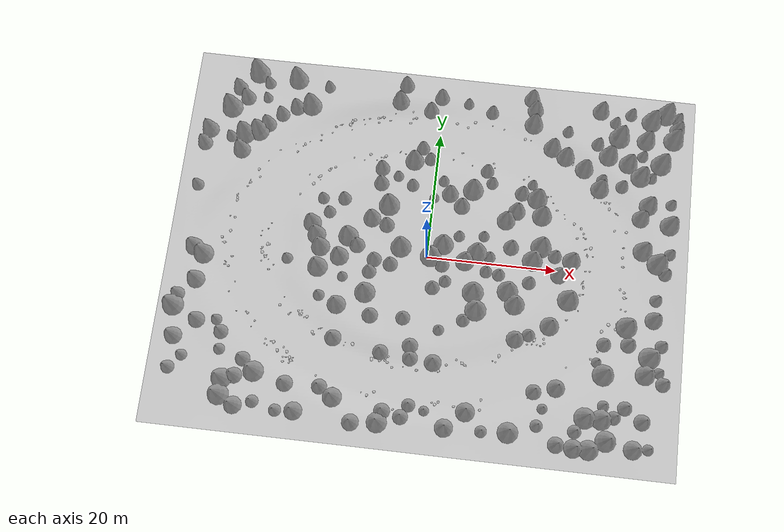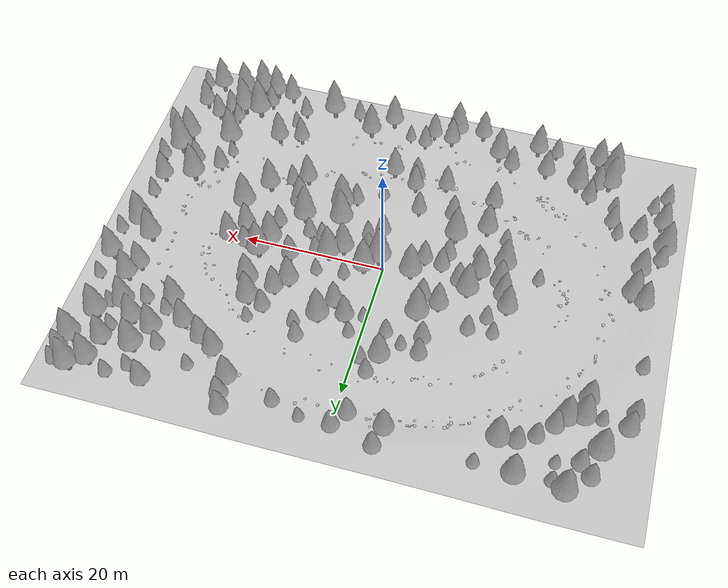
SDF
<sdf version="1.9">
 <world name="nomad_forest">
  <model name="terrain">
   <static>true</static>
   <link name="link">
    <visual name="visual">
     <geometry><mesh><uri>../assets/geometry/terrain.obj</uri><scale>1 1 1</scale></mesh></geometry>
    </visual>
    <collision name="rock">
     <geometry><mesh><uri>../assets/geometry/terrain.obj</uri><scale>1 1 1</scale></mesh></geometry>
    </collision>
   </link>
  </model>
  <model name="tree_008">
   <static>true</static>
   <pose>27.028014178492697 -13.703150324552041 0.10522057027871731 0 0 4.481603648520085</pose>
   <link name="link">
    <visual name="visual">
     <geometry>
      <mesh>
       <uri>../assets/models/pine_tree.obj</uri>
       <scale>0.872212938759646 0.872212938759646 0.872212938759646</scale>
      </mesh>
     </geometry>
    </visual>
    <collision name="trunk">
     <pose>0 0 1.3955407020154338 0 0 0</pose>
     <geometry>
      <cylinder><radius>0.17444258775192922</radius><length>2.7910814040308676</length></cylinder>
     </geometry>
    </collision>
   </link>
  </model>
  <model name="tree_027">
   <static>true</static>
   <pose>-3.5277313933253964 14.400699741064074 0.34554549312120136 0 0 4.773965867274131</pose>
   <link name="link">
    <visual name="visual">
     <geometry>
      <mesh>
       <uri>../assets/models/pine_tree.obj</uri>
       <scale>1.6400643866674114 1.6400643866674114 1.6400643866674114</scale>
      </mesh>
     </geometry>
    </visual>
    <collision name="trunk">
     <pose>0 0 2.6241030186678582 0 0 0</pose>
     <geometry>
      <cylinder><radius>0.3280128773334823</radius><length>5.2482060373357164</length></cylinder>
     </geometry>
    </collision>
   </link>
  </model>
  <model name="tree_037">
   <static>true</static>
   <pose>-6.838054801052387 24.097928054166218 0.3183466515210811 0 0 1.8420546594271203</pose>
   <link name="link">
    <visual name="visual">
     <geometry>
      <mesh>
       <uri>../assets/models/pine_tree.obj</uri>
       <scale>1.5101867661153476 1.5101867661153476 1.5101867661153476</scale>
      </mesh>
     </geometry>
    </visual>
    <collision name="trunk">
     <pose>0 0 2.4162988257845566 0 0 0</pose>
     <geometry>
      <cylinder><radius>0.30203735322306957</radius><length>4.832597651569113</length></cylinder>
     </geometry>
    </collision>
   </link>
  </model>
  <model name="tree_044">
   <static>true</static>
   <pose>-0.6944197450645646 -16.28772859136997 0.09216975908654848 0 0 5.097573754092246</pose>
   <link name="link">
    <visual name="visual">
     <geometry>
      <mesh>
       <uri>../assets/models/pine_tree.obj</uri>
       <scale>1.31694152696172 1.31694152696172 1.31694152696172</scale>
      </mesh>
     </geometry>
    </visual>
    <collision name="trunk">
     <pose>0 0 2.107106443138752 0 0 0</pose>
     <geometry><cylinder><radius>0.263388305392344</radius><length>4.214212886277504</length></cylinder></geometry>
    </collision>
   </link>
  </model>
  <model name="tree_050">
   <static>true</static>
   <pose>-1.1061359489396452 -25.091046535095707 0.2934541649659578 0 0 3.356134354959896</pose>
   <link name="link">
    <visual name="visual">
     <geometry>
      <mesh>
       <uri>../assets/models/pine_tree.obj</uri>
       <scale>1.2975089270482345 1.2975089270482345 1.2975089270482345</scale>
      </mesh>
     </geometry>
    </visual>
    <collision name="trunk">
     <pose>0 0 2.0760142832771753 0 0 0</pose>
     <geometry>
      <cylinder><radius>0.2595017854096469</radius><length>4.152028566554351</length></cylinder>
     </geometry>
    </collision>
   </link>
  </model>
  <model name="tree_052">
   <static>true</static>
   <pose>25.82947797008444 14.953682755541983 0.1237556540531741 0 0 5.209714762356501</pose>
   <link name="link">
    <visual name="visual">
     <geometry>
      <mesh>
       <uri>../assets/models/pine_tree.obj</uri>
       <scale>0.9728560512969 0.9728560512969 0.9728560512969</scale>
      </mesh>
     </geometry>
    </visual>
    <collision name="trunk">
     <pose>0 0 1.55656968207504 0 0 0</pose>
     <geometry><cylinder><radius>0.19457121025938</radius><length>3.11313936415008</length></cylinder></geometry>
    </collision>
   </link>
  </model>
  <model name="tree_057">
   <static>true</static>
   <pose>32.662530551681385 3.868126164199179 0.04584181324544547 0 0 1.265047968646845</pose>
   <link name="link">
    <visual name="visual">
     <geometry>
      <mesh>
       <uri>../assets/models/pine_tree.obj</uri>
       <scale>1.6828321635530306 1.6828321635530306 1.6828321635530306</scale>
      </mesh>
     </geometry>
    </visual>
    <collision name="trunk">
     <pose>0 0 2.6925314616848492 0 0 0</pose>
     <geometry>
      <cylinder><radius>0.33656643271060616</radius><length>5.3850629233696985</length></cylinder>
     </geometry>
    </collision>
   </link>
  </model>
  <model name="tree_088">
   <static>true</static>
   <pose>14.407480217703046 22.553752029402126 0.12159984545240302 0 0 1.0926064363496</pose>
   <link name="link">
    <visual name="visual">
     <geometry>
      <mesh>
       <uri>../assets/models/pine_tree.obj</uri>
       <scale>1.6249716935393592 1.6249716935393592 1.6249716935393592</scale>
      </mesh>
     </geometry>
    </visual>
    <collision name="trunk">
     <pose>0 0 2.599954709662975 0 0 0</pose>
     <geometry>
      <cylinder><radius>0.32499433870787187</radius><length>5.19990941932595</length></cylinder>
     </geometry>
    </collision>
   </link>
  </model>
  <model name="tree_089">
   <static>true</static>
   <pose>7.9109952699382475 14.24619827741737 0.14807216027929987 0 0 0.6908726701590014</pose>
   <link name="link">
    <visual name="visual">
     <geometry>
      <mesh>
       <uri>../assets/models/pine_tree.obj</uri>
       <scale>1.1662685729388265 1.1662685729388265 1.1662685729388265</scale>
      </mesh>
     </geometry>
    </visual>
    <collision name="trunk">
     <pose>0 0 1.8660297167021225 0 0 0</pose>
     <geometry>
      <cylinder><radius>0.2332537145877653</radius><length>3.732059433404245</length></cylinder>
     </geometry>
    </collision>
   </link>
  </model>
  <model name="tree_090">
   <static>true</static>
   <pose>15.18533694559948 13.00563300321808 0.022925955796178663 0 0 1.3401102927088524</pose>
   <link name="link">
    <visual name="visual">
     <geometry>
      <mesh>
       <uri>../assets/models/pine_tree.obj</uri>
       <scale>0.8771157931536824 0.8771157931536824 0.8771157931536824</scale>
      </mesh>
     </geometry>
    </visual>
    <collision name="trunk">
     <pose>0 0 1.403385269045892 0 0 0</pose>
     <geometry>
      <cylinder><radius>0.1754231586307365</radius><length>2.806770538091784</length></cylinder>
     </geometry>
    </collision>
   </link>
  </model>
  <model name="tree_093">
   <static>true</static>
   <pose>-0.4101599007176091 25.530758966068746 0.3203593033074379 0 0 1.381521473218588</pose>
   <link name="link">
    <visual name="visual">
     <geometry>
      <mesh>
       <uri>../assets/models/pine_tree.obj</uri>
       <scale>1.2950612626595357 1.2950612626595357 1.2950612626595357</scale>
      </mesh>
     </geometry>
    </visual>
    <collision name="trunk">
     <pose>0 0 2.072098020255257 0 0 0</pose>
     <geometry>
      <cylinder><radius>0.25901225253190713</radius><length>4.144196040510514</length></cylinder>
     </geometry>
    </collision>
   </link>
  </model>
  <model name="tree_107">
   <static>true</static>
   <pose>27.88689453451606 -10.970627983664116 0.007158645208842348 0 0 0.08446521569186297</pose>
   <link name="link">
    <visual name="visual">
     <geometry>
      <mesh>
       <uri>../assets/models/pine_tree.obj</uri>
       <scale>1.2264539337988716 1.2264539337988716 1.2264539337988716</scale>
      </mesh>
     </geometry>
    </visual>
    <collision name="trunk">
     <pose>0 0 1.9623262940781947 0 0 0</pose>
     <geometry>
      <cylinder><radius>0.24529078675977434</radius><length>3.9246525881563894</length></cylinder>
     </geometry>
    </collision>
   </link>
  </model>
  <model name="tree_116">
   <static>true</static>
   <pose>3.901959461409284 25.274708666629643 0.1876667054431287 0 0 2.3750415958828146</pose>
   <link name="link">
    <visual name="visual">
     <geometry>
      <mesh>
       <uri>../assets/models/pine_tree.obj</uri>
       <scale>0.881851551358716 0.881851551358716 0.881851551358716</scale>
      </mesh>
     </geometry>
    </visual>
    <collision name="trunk">
     <pose>0 0 1.4109624821739457 0 0 0</pose>
     <geometry>
      <cylinder><radius>0.1763703102717432</radius><length>2.8219249643478914</length></cylinder>
     </geometry>
    </collision>
   </link>
  </model>
  <model name="tree_117">
   <static>true</static>
   <pose>21.227727869553974 -18.35861671438202 0.12284261739145064 0 0 5.279835247835885</pose>
   <link name="link">
    <visual name="visual">
     <geometry>
      <mesh>
       <uri>../assets/models/pine_tree.obj</uri>
       <scale>1.5173100253855933 1.5173100253855933 1.5173100253855933</scale>
      </mesh>
     </geometry>
    </visual>
    <collision name="trunk">
     <pose>0 0 2.4276960406169494 0 0 0</pose>
     <geometry>
      <cylinder><radius>0.3034620050771187</radius><length>4.855392081233899</length></cylinder>
     </geometry>
    </collision>
   </link>
  </model>
  <model name="tree_125">
   <static>true</static>
   <pose>8.278923651371827 -23.338074658547907 0.04504216126783869 0 0 3.100685621794506</pose>
   <link name="link">
    <visual name="visual">
     <geometry>
      <mesh>
       <uri>../assets/models/pine_tree.obj</uri>
       <scale>1.6162740233519732 1.6162740233519732 1.6162740233519732</scale>
      </mesh>
     </geometry>
    </visual>
    <collision name="trunk">
     <pose>0 0 2.5860384373631575 0 0 0</pose>
     <geometry>
      <cylinder><radius>0.3232548046703947</radius><length>5.172076874726315</length></cylinder>
     </geometry>
    </collision>
   </link>
  </model>
  <model name="tree_130">
   <static>true</static>
   <pose>7.769831710219748 24.104718336171253 0.08089541007803772 0 0 1.3783256278907965</pose>
   <link name="link">
    <visual name="visual">
     <geometry>
      <mesh>
       <uri>../assets/models/pine_tree.obj</uri>
       <scale>1.1183292101736146 1.1183292101736146 1.1183292101736146</scale>
      </mesh>
     </geometry>
    </visual>
    <collision name="trunk">
     <pose>0 0 1.7893267362777836 0 0 0</pose>
     <geometry>
      <cylinder><radius>0.22366584203472295</radius><length>3.578653472555567</length></cylinder>
     </geometry>
    </collision>
   </link>
  </model>
  <model name="tree_154">
   <static>true</static>
   <pose>17.651785390561322 19.02903484435535 0.009740114490875014 0 0 5.766734174587824</pose>
   <link name="link">
    <visual name="visual">
     <geometry>
      <mesh>
       <uri>../assets/models/pine_tree.obj</uri>
       <scale>1.5581005956296345 1.5581005956296345 1.5581005956296345</scale>
      </mesh>
     </geometry>
    </visual>
    <collision name="trunk">
     <pose>0 0 2.4929609530074153 0 0 0</pose>
     <geometry>
      <cylinder><radius>0.3116201191259269</radius><length>4.9859219060148305</length></cylinder>
     </geometry>
    </collision>
   </link>
  </model>
  <model name="tree_173">
   <static>true</static>
   <pose>22.844042043730475 16.10085182890589 0.02104958493798361 0 0 1.1745854983760833</pose>
   <link name="link">
    <visual name="visual">
     <geometry>
      <mesh>
       <uri>../assets/models/pine_tree.obj</uri>
       <scale>1.5943972221136828 1.5943972221136828 1.5943972221136828</scale>
      </mesh>
     </geometry>
    </visual>
    <collision name="trunk">
     <pose>0 0 2.5510355553818926 0 0 0</pose>
     <geometry>
      <cylinder><radius>0.3188794444227366</radius><length>5.102071110763785</length></cylinder>
     </geometry>
    </collision>
   </link>
  </model>
  <model name="tree_177">
   <static>true</static>
   <pose>18.03140527280879 -19.19780167943599 0.027220353944131973 0 0 2.021113643597254</pose>
   <link name="link">
    <visual name="visual">
     <geometry>
      <mesh>
       <uri>../assets/models/pine_tree.obj</uri>
       <scale>1.3096677524979847 1.3096677524979847 1.3096677524979847</scale>
      </mesh>
     </geometry>
    </visual>
    <collision name="trunk">
     <pose>0 0 2.0954684039967755 0 0 0</pose>
     <geometry>
      <cylinder><radius>0.26193355049959693</radius><length>4.190936807993551</length></cylinder>
     </geometry>
    </collision>
   </link>
  </model>
  <model name="tree_180">
   <static>true</static>
   <pose>14.559127157640404 -11.740691080659284 0.15613650143330854 0 0 3.864172395873214</pose>
   <link name="link">
    <visual name="visual">
     <geometry>
      <mesh>
       <uri>../assets/models/pine_tree.obj</uri>
       <scale>1.4987847975488755 1.4987847975488755 1.4987847975488755</scale>
      </mesh>
     </geometry>
    </visual>
    <collision name="trunk">
     <pose>0 0 2.398055676078201 0 0 0</pose>
     <geometry>
      <cylinder><radius>0.2997569595097751</radius><length>4.796111352156402</length></cylinder>
     </geometry>
    </collision>
   </link>
  </model>
  <model name="tree_203">
   <static>true</static>
   <pose>-5.197439825414012 -15.853306755028207 0.1186527584080492 0 0 1.3332269104170271</pose>
   <link name="link">
    <visual name="visual">
     <geometry>
      <mesh>
       <uri>../assets/models/pine_tree.obj</uri>
       <scale>1.3299708985410217 1.3299708985410217 1.3299708985410217</scale>
      </mesh>
     </geometry>
    </visual>
    <collision name="trunk">
     <pose>0 0 2.1279534376656346 0 0 0</pose>
     <geometry>
      <cylinder><radius>0.2659941797082043</radius><length>4.255906875331269</length></cylinder>
     </geometry>
    </collision>
   </link>
  </model>
  <model name="tree_206">
   <static>true</static>
   <pose>-11.380744848688852 -23.404847185497154 0.36625378211241333 0 0 3.581989815266369</pose>
   <link name="link">
    <visual name="visual">
     <geometry>
      <mesh>
       <uri>../assets/models/pine_tree.obj</uri>
       <scale>1.6466060610825708 1.6466060610825708 1.6466060610825708</scale>
      </mesh>
     </geometry>
    </visual>
    <collision name="trunk">
     <pose>0 0 2.6345696977321134 0 0 0</pose>
     <geometry>
      <cylinder><radius>0.32932121221651417</radius><length>5.269139395464227</length></cylinder>
     </geometry>
    </collision>
   </link>
  </model>
  <model name="tree_219">
   <static>true</static>
   <pose>30.958540004356266 -8.172230519211862 0.05518128078366228 0 0 4.713495328663546</pose>
   <link name="link">
    <visual name="visual">
     <geometry>
      <mesh>
       <uri>../assets/models/pine_tree.obj</uri>
       <scale>1.800770549386944 1.800770549386944 1.800770549386944</scale>
      </mesh>
     </geometry>
    </visual>
    <collision name="trunk">
     <pose>0 0 2.8812328790191106 0 0 0</pose>
     <geometry>
      <cylinder><radius>0.36015410987738883</radius><length>5.762465758038221</length></cylinder>
     </geometry>
    </collision>
   </link>
  </model>
  <model name="tree_220">
   <static>true</static>
   <pose>19.50552548718698 -9.221914441570291 0.04361500431175253 0 0 4.212629607549605</pose>
   <link name="link">
    <visual name="visual">
     <geometry>
      <mesh>
       <uri>../assets/models/pine_tree.obj</uri>
       <scale>1.6155444754241848 1.6155444754241848 1.6155444754241848</scale>
      </mesh>
     </geometry>
    </visual>
    <collision name="trunk">
     <pose>0 0 2.584871160678696 0 0 0</pose>
     <geometry><cylinder><radius>0.323108895084837</radius><length>5.169742321357392</length></cylinder></geometry>
    </collision>
   </link>
  </model>
  <model name="tree_223">
   <static>true</static>
   <pose>15.996673173253711 10.313177564823377 0.20835354804003786 0 0 5.374457714088277</pose>
   <link name="link">
    <visual name="visual">
     <geometry>
      <mesh>
       <uri>../assets/models/pine_tree.obj</uri>
       <scale>1.7249962435673645 1.7249962435673645 1.7249962435673645</scale>
      </mesh>
     </geometry>
    </visual>
    <collision name="trunk">
     <pose>0 0 2.7599939897077834 0 0 0</pose>
     <geometry>
      <cylinder><radius>0.34499924871347293</radius><length>5.519987979415567</length></cylinder>
     </geometry>
    </collision>
   </link>
  </model>
  <model name="tree_228">
   <static>true</static>
   <pose>25.45680936713127 13.129694291648406 6.167398188283665e-05 0 0 5.203901058325098</pose>
   <link name="link">
    <visual name="visual">
     <geometry>
      <mesh>
       <uri>../assets/models/pine_tree.obj</uri>
       <scale>1.6022972713277888 1.6022972713277888 1.6022972713277888</scale>
      </mesh>
     </geometry>
    </visual>
    <collision name="trunk">
     <pose>0 0 2.563675634124462 0 0 0</pose>
     <geometry>
      <cylinder><radius>0.3204594542655578</radius><length>5.127351268248924</length></cylinder>
     </geometry>
    </collision>
   </link>
  </model>
  <model name="tree_233">
   <static>true</static>
   <pose>-13.54109604088142 -21.979906408534855 0.19125328296701594 0 0 1.3111900521647948</pose>
   <link name="link">
    <visual name="visual">
     <geometry>
      <mesh>
       <uri>../assets/models/pine_tree.obj</uri>
       <scale>1.316872614657453 1.316872614657453 1.316872614657453</scale>
      </mesh>
     </geometry>
    </visual>
    <collision name="trunk">
     <pose>0 0 2.106996183451925 0 0 0</pose>
     <geometry><cylinder><radius>0.2633745229314906</radius><length>4.21399236690385</length></cylinder></geometry>
    </collision>
   </link>
  </model>
  <model name="tree_235">
   <static>true</static>
   <pose>-12.502700017331392 -14.51735591329966 0.023686940358477668 0 0 5.659660308240993</pose>
   <link name="link">
    <visual name="visual">
     <geometry>
      <mesh>
       <uri>../assets/models/pine_tree.obj</uri>
       <scale>1.433883082825281 1.433883082825281 1.433883082825281</scale>
      </mesh>
     </geometry>
    </visual>
    <collision name="trunk">
     <pose>0 0 2.2942129325204497 0 0 0</pose>
     <geometry>
      <cylinder><radius>0.2867766165650562</radius><length>4.588425865040899</length></cylinder>
     </geometry>
    </collision>
   </link>
  </model>
  <model name="tree_245">
   <static>true</static>
   <pose>13.622340662437132 11.132480147568849 0.27316592184756877 0 0 3.071390549499069</pose>
   <link name="link">
    <visual name="visual">
     <geometry>
      <mesh>
       <uri>../assets/models/pine_tree.obj</uri>
       <scale>1.2629664374706708 1.2629664374706708 1.2629664374706708</scale>
      </mesh>
     </geometry>
    </visual>
    <collision name="trunk">
     <pose>0 0 2.0207462999530734 0 0 0</pose>
     <geometry>
      <cylinder><radius>0.2525932874941342</radius><length>4.041492599906147</length></cylinder>
     </geometry>
    </collision>
   </link>
  </model>
  <model name="tree_264">
   <static>true</static>
   <pose>-1.8892263109835525 23.23498549950569 0.05179392481268781 0 0 5.666838938089254</pose>
   <link name="link">
    <visual name="visual">
     <geometry>
      <mesh>
       <uri>../assets/models/pine_tree.obj</uri>
       <scale>1.3181435326113693 1.3181435326113693 1.3181435326113693</scale>
      </mesh>
     </geometry>
    </visual>
    <collision name="trunk">
     <pose>0 0 2.109029652178191 0 0 0</pose>
     <geometry>
      <cylinder><radius>0.2636287065222739</radius><length>4.218059304356382</length></cylinder>
     </geometry>
    </collision>
   </link>
  </model>
  <model name="tree_281">
   <static>true</static>
   <pose>2.227795265765181 -23.734357649712855 0.07371719865834456 0 0 3.381447673652861</pose>
   <link name="link">
    <visual name="visual">
     <geometry>
      <mesh>
       <uri>../assets/models/pine_tree.obj</uri>
       <scale>0.865691163320495 0.865691163320495 0.865691163320495</scale>
      </mesh>
     </geometry>
    </visual>
    <collision name="trunk">
     <pose>0 0 1.385105861312792 0 0 0</pose>
     <geometry><cylinder><radius>0.173138232664099</radius><length>2.770211722625584</length></cylinder></geometry>
    </collision>
   </link>
  </model>
  <model name="tree_305">
   <static>true</static>
   <pose>-0.8975660837530057 -14.456411950127038 0.32238576212721215 0 0 0.19452659854369184</pose>
   <link name="link">
    <visual name="visual">
     <geometry>
      <mesh>
       <uri>../assets/models/pine_tree.obj</uri>
       <scale>1.3544935712707344 1.3544935712707344 1.3544935712707344</scale>
      </mesh>
     </geometry>
    </visual>
    <collision name="trunk">
     <pose>0 0 2.1671897140331753 0 0 0</pose>
     <geometry>
      <cylinder><radius>0.2708987142541469</radius><length>4.334379428066351</length></cylinder>
     </geometry>
    </collision>
   </link>
  </model>
  <model name="tree_317">
   <static>true</static>
   <pose>-3.904218006516203 -24.55569392974195 0.29950889091823973 0 0 3.148997985344292</pose>
   <link name="link">
    <visual name="visual">
     <geometry>
      <mesh>
       <uri>../assets/models/pine_tree.obj</uri>
       <scale>1.3779655574262861 1.3779655574262861 1.3779655574262861</scale>
      </mesh>
     </geometry>
    </visual>
    <collision name="trunk">
     <pose>0 0 2.204744891882058 0 0 0</pose>
     <geometry>
      <cylinder><radius>0.2755931114852572</radius><length>4.409489783764116</length></cylinder>
     </geometry>
    </collision>
   </link>
  </model>
  <model name="tree_325">
   <static>true</static>
   <pose>19.817920873142 17.75812271833344 0.006513385251288885 0 0 4.817235107069238</pose>
   <link name="link">
    <visual name="visual">
     <geometry>
      <mesh>
       <uri>../assets/models/pine_tree.obj</uri>
       <scale>1.5711326268390122 1.5711326268390122 1.5711326268390122</scale>
      </mesh>
     </geometry>
    </visual>
    <collision name="trunk">
     <pose>0 0 2.51381220294242 0 0 0</pose>
     <geometry><cylinder><radius>0.3142265253678025</radius><length>5.02762440588484</length></cylinder></geometry>
    </collision>
   </link>
  </model>
  <model name="tree_328">
   <static>true</static>
   <pose>22.01328066443078 1.1434853658687096 0.10114454126965187 0 0 5.423350358558584</pose>
   <link name="link">
    <visual name="visual">
     <geometry>
      <mesh>
       <uri>../assets/models/pine_tree.obj</uri>
       <scale>1.5760353071200561 1.5760353071200561 1.5760353071200561</scale>
      </mesh>
     </geometry>
    </visual>
    <collision name="trunk">
     <pose>0 0 2.52165649139209 0 0 0</pose>
     <geometry><cylinder><radius>0.3152070614240112</radius><length>5.04331298278418</length></cylinder></geometry>
    </collision>
   </link>
  </model>
  <model name="tree_330">
   <static>true</static>
   <pose>-1.0750491567116285 15.245894340836259 0.2337666657491596 0 0 1.1394167677937614</pose>
   <link name="link">
    <visual name="visual">
     <geometry>
      <mesh>
       <uri>../assets/models/pine_tree.obj</uri>
       <scale>1.0807773437767354 1.0807773437767354 1.0807773437767354</scale>
      </mesh>
     </geometry>
    </visual>
    <collision name="trunk">
     <pose>0 0 1.7292437500427766 0 0 0</pose>
     <geometry>
      <cylinder><radius>0.21615546875534708</radius><length>3.4584875000855533</length></cylinder>
     </geometry>
    </collision>
   </link>
  </model>
  <model name="tree_334">
   <static>true</static>
   <pose>-0.13191612169986655 -23.206744235878563 0.037533626721550306 0 0 0.14197712481497912</pose>
   <link name="link">
    <visual name="visual">
     <geometry>
      <mesh>
       <uri>../assets/models/pine_tree.obj</uri>
       <scale>1.1490073539496781 1.1490073539496781 1.1490073539496781</scale>
      </mesh>
     </geometry>
    </visual>
    <collision name="trunk">
     <pose>0 0 1.838411766319485 0 0 0</pose>
     <geometry>
      <cylinder><radius>0.22980147078993562</radius><length>3.67682353263897</length></cylinder>
     </geometry>
    </collision>
   </link>
  </model>
  <model name="tree_347">
   <static>true</static>
   <pose>2.75414567540048 -16.604077618052603 0.03388875889982491 0 0 2.0167674513362903</pose>
   <link name="link">
    <visual name="visual">
     <geometry>
      <mesh>
       <uri>../assets/models/pine_tree.obj</uri>
       <scale>1.4617330145590501 1.4617330145590501 1.4617330145590501</scale>
      </mesh>
     </geometry>
    </visual>
    <collision name="trunk">
     <pose>0 0 2.33877282329448 0 0 0</pose>
     <geometry><cylinder><radius>0.29234660291181</radius><length>4.67754564658896</length></cylinder></geometry>
    </collision>
   </link>
  </model>
  <model name="tree_350">
   <static>true</static>
   <pose>-2.455933277815383 16.959183442058986 0.021759945295370692 0 0 3.234127921712025</pose>
   <link name="link">
    <visual name="visual">
     <geometry>
      <mesh>
       <uri>../assets/models/pine_tree.obj</uri>
       <scale>1.1474938048414587 1.1474938048414587 1.1474938048414587</scale>
      </mesh>
     </geometry>
    </visual>
    <collision name="trunk">
     <pose>0 0 1.835990087746334 0 0 0</pose>
     <geometry>
      <cylinder><radius>0.22949876096829175</radius><length>3.671980175492668</length></cylinder>
     </geometry>
    </collision>
   </link>
  </model>
  <model name="tree_364">
   <static>true</static>
   <pose>21.930713736674342 -5.0302026493892456 0.05215562800888457 0 0 3.65905403497905</pose>
   <link name="link">
    <visual name="visual">
     <geometry>
      <mesh>
       <uri>../assets/models/pine_tree.obj</uri>
       <scale>1.8270123098198323 1.8270123098198323 1.8270123098198323</scale>
      </mesh>
     </geometry>
    </visual>
    <collision name="trunk">
     <pose>0 0 2.923219695711732 0 0 0</pose>
     <geometry>
      <cylinder><radius>0.3654024619639665</radius><length>5.846439391423464</length></cylinder>
     </geometry>
    </collision>
   </link>
  </model>
  <model name="tree_365">
   <static>true</static>
   <pose>16.555916080336367 -10.803332677849887 0.12185768730788693 0 0 5.615669866061002</pose>
   <link name="link">
    <visual name="visual">
     <geometry>
      <mesh>
       <uri>../assets/models/pine_tree.obj</uri>
       <scale>1.1028919836723192 1.1028919836723192 1.1028919836723192</scale>
      </mesh>
     </geometry>
    </visual>
    <collision name="trunk">
     <pose>0 0 1.7646271738757109 0 0 0</pose>
     <geometry>
      <cylinder><radius>0.22057839673446386</radius><length>3.5292543477514218</length></cylinder>
     </geometry>
    </collision>
   </link>
  </model>
  <model name="forest_clusters">
   <static>true</static>
   <link name="link">
    <visual name="visual">
     <geometry><mesh><uri>../assets/geometry/forest_clusters.obj</uri><scale>1 1 1</scale></mesh></geometry>
    </visual>
   </link>
  </model>
  <model name="fallen_wood_and_stones">
   <static>true</static>
   <link name="link">
    <visual name="visual">
     <geometry><mesh><uri>../assets/geometry/roadside_details.obj</uri><scale>1 1 1</scale></mesh></geometry>
    </visual>
   </link>
  </model>
 </world>
</sdf>
